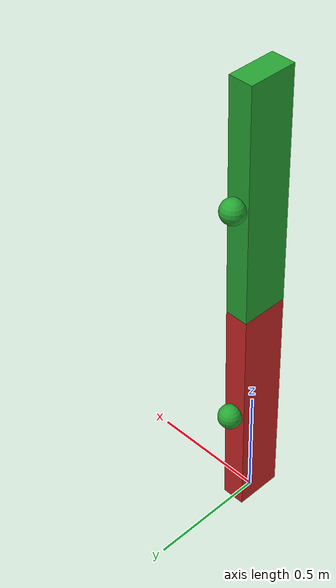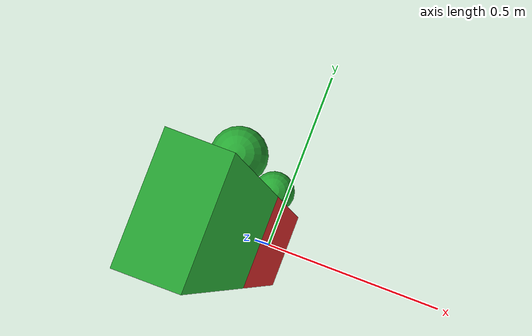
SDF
<sdf version="1.4">
  <world name="default">
    <include>
      <uri>model://sun</uri>
    </include>
    <physics type="ode">
      <gravity>0.000000 0.000000 0</gravity>
      <ode>
        <solver>
          <type>quick</type>
          <iters>1000</iters>
          <precon_iters>0</precon_iters>
          <sor>1.000000</sor>
        </solver>
        <constraints>
          <cfm>0.000000</cfm>
          <erp>0.200000</erp>
          <contact_max_correcting_vel>100.000000</contact_max_correcting_vel>
          <contact_surface_layer>0.01000</contact_surface_layer>
        </constraints>
      </ode>
      <bullet>
        <solver>
          <type>sequential_impulse</type>
          <iters>1000</iters>
          <sor>1.000000</sor>
        </solver>
        <constraints>
          <cfm>0.000000</cfm>
          <erp>0.200000</erp>
          <split_impulse>true</split_impulse>
          <split_impulse_penetration_threshold>-0.01</split_impulse_penetration_threshold>
          <contact_surface_layer>0.00000</contact_surface_layer>
        </constraints>
      </bullet>
      <real_time_update_rate>0.000000</real_time_update_rate>
      <max_step_size>0.001</max_step_size>
    </physics>
    <model name="model_1">
      <link name="link_00">
        <gravity>true</gravity>
        <pose>0 0 2 0 0 0</pose>
        <inertial>
          <mass>0.1</mass>
          <pose>0 0 -0.5 0 0 0</pose>
          <inertia>
            <ixx>0.01</ixx>
            <ixy>0</ixy>
            <ixz>0</ixz>
            <iyy>0.01</iyy>
            <iyz>0</iyz>
            <izz>0.01</izz>
          </inertia>
        </inertial>
        <collision name="col">
          <pose>0 0 -0.5 0 0 0</pose>
          <geometry>
            <box>
              <size>0.10 0.20 1.0</size>
            </box>
          </geometry>
        </collision>
        <visual name="vis">
          <pose>0 0 -0.5 0 0 0</pose>
          <geometry>
            <box>
              <size>0.10 0.20 1.0</size>
            </box>
          </geometry>
          <material>
            <script><uri>file://media/materials/scripts/gazebo.material</uri><name>Gazebo/Green</name></script>
          </material>
        </visual>
        <visual name="vis2">
          <pose>0 0.125 -0.5 0 0 0</pose>
          <geometry>
            <sphere>
              <radius>0.05</radius>
            </sphere>
          </geometry>
          <material>
            <script><uri>file://media/materials/scripts/gazebo.material</uri><name>Gazebo/Green</name></script>
          </material>
        </visual>
      </link>
      <link name="link_01">
        <gravity>true</gravity>
        <pose>0 0 1.0 0 0 0</pose>
        <inertial>
          <mass>0.1</mass>
          <pose>0 0 -0.5 0 0 0</pose>
          <inertia>
            <ixx>0.01</ixx>
            <ixy>0</ixy>
            <ixz>0</ixz>
            <iyy>0.01</iyy>
            <iyz>0</iyz>
            <izz>0.01</izz>
          </inertia>
        </inertial>
        <collision name="col">
          <pose>0 0 -0.5 0 0 0</pose>
          <geometry>
            <box>
              <size>0.10 0.20 1.0</size>
            </box>
          </geometry>
          <surface>
            <contact>
              <ode>
                <min_depth>0.005</min_depth>
              </ode>
            </contact>
            <friction>
              <ode>
                <mu>1.0</mu>
                <mu2>1.0</mu2>
              </ode>
            </friction>
          </surface>
        </collision>
        <visual name="vis">
          <pose>0 0 -0.5 0 0 0</pose>
          <geometry>
            <box>
              <size>0.10 0.20 1.0</size>
            </box>
          </geometry>
          <material>
            <script><uri>file://media/materials/scripts/gazebo.material</uri><name>Gazebo/Red</name></script>
          </material>
        </visual>
        <visual name="vis2">
          <pose>0 0.125 -0.5 0 0 0</pose>
          <geometry>
            <sphere>
              <radius>0.05</radius>
            </sphere>
          </geometry>
          <material>
            <script><uri>file://media/materials/scripts/gazebo.material</uri><name>Gazebo/Green</name></script>
          </material>
        </visual>
      </link>

      <joint name="joint_00" type="universal">
        <parent>world</parent>
        <child>link_00</child>
        <axis>
          <xyz>1 0 0</xyz>
          <limit>
            <lower>-1.7</lower>
            <upper>1.7</upper>
            <stiffness>1e6</stiffness>
          </limit>
          <dynamics>
            <damping>0.0001</damping>
          </dynamics>
        </axis>
        <axis2>
          <xyz>0 1 0</xyz>
          <limit>
            <lower>-1.7</lower>
            <upper>1.7</upper>
            <stiffness>1e6</stiffness>
          </limit>
          <dynamics>
            <damping>0.0001</damping>
          </dynamics>
        </axis2>
        <physics>
          <ode>
            <cfm_damping>1</cfm_damping>
          </ode>
        </physics>
      </joint>
      <joint name="joint_01" type="universal">
        <child>link_01</child>
        <parent>link_00</parent>
        <axis>
          <xyz>1 0 0</xyz>
          <limit>
            <lower>-1.4</lower>
            <upper>1.4</upper>
          </limit>
          <dynamics>
            <damping>0.1</damping>
          </dynamics>
        </axis>
        <axis2>
          <xyz>0 1 0</xyz>
          <limit>
            <lower>-1.27</lower>
            <upper>1.27</upper>
          </limit>
          <dynamics>
            <damping>0.1</damping>
          </dynamics>
        </axis2>
        <physics>
          <ode>
            <cfm_damping>1</cfm_damping>
          </ode>
        </physics>
      </joint>
    </model>
  </world>
</sdf>
